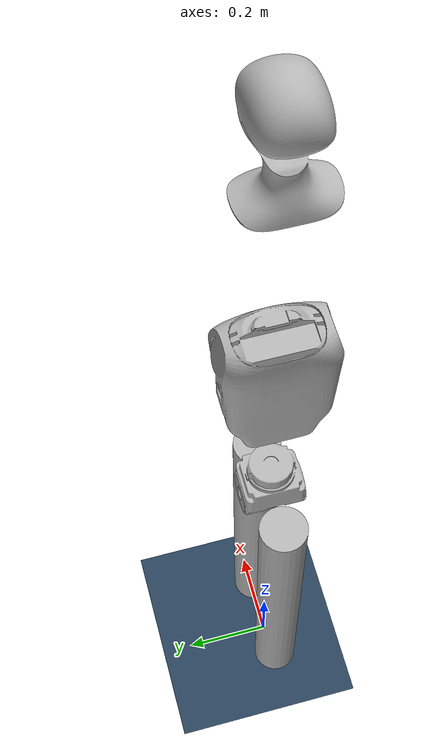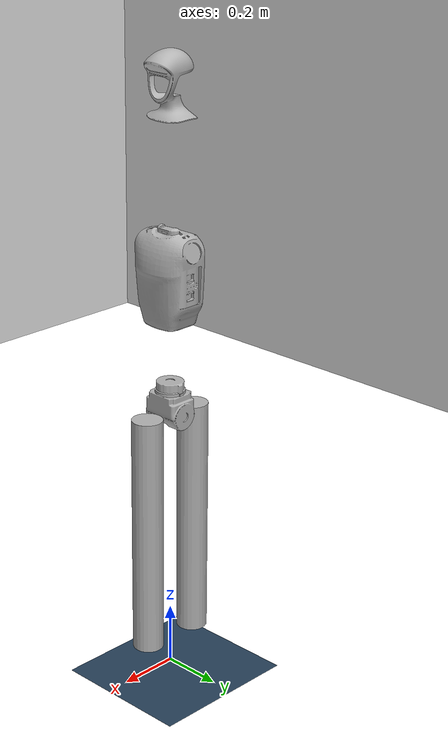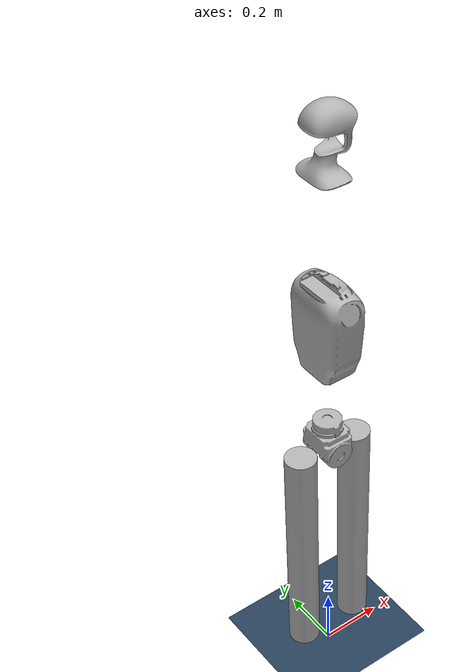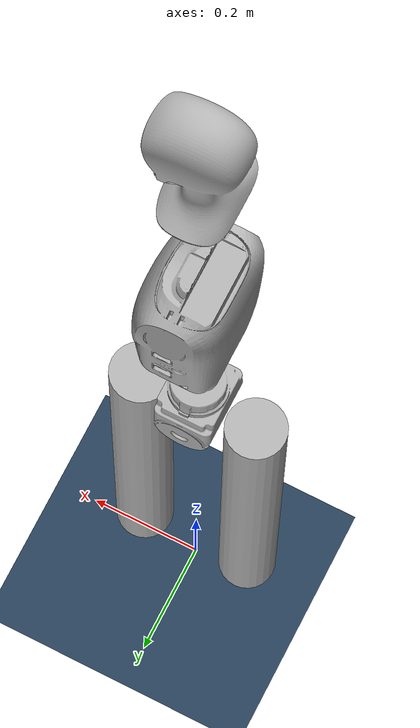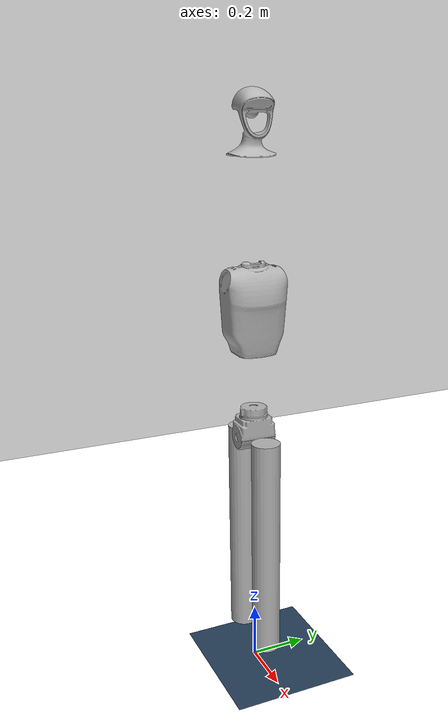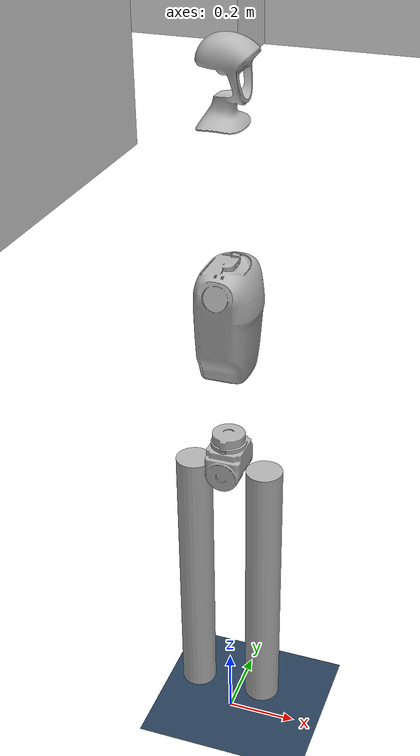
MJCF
<mujoco model="g1_office_complete">
  <compiler angle="radian" autolimits="true"/>

  <statistic center="0 0 2" extent="20"/>

  <visual>
    <headlight diffuse="0.6 0.6 0.6" ambient="0.3 0.3 0.3" specular="0 0 0"/>
    <rgba haze="0.15 0.25 0.35 1"/>
    <global azimuth="-130" elevation="-20"/>
  </visual>

  <default>
    <!-- Classes do G1 -->
    <default class="leg_motor">
      <joint damping="0.05" armature="0.01" frictionloss="0.2" />
    </default>
    <default class="ankle_motor">
      <joint damping="0.05" armature="0.01" frictionloss="0.2" />
    </default>
    <default class="arm_motor">
      <joint damping="0.05" armature="0.01" frictionloss="0.2" />
    </default>
    <default class="waist_motor">
      <joint damping="0.05" armature="0.01" frictionloss="0.2" />
    </default>
    <default class="hand_motor">
      <joint damping="0.01" armature="0.001" frictionloss="0.05" />
    </default>
  </default>

  <asset>
    <texture type="skybox" builtin="gradient" rgb1="0.3 0.5 0.7" rgb2="0 0 0" width="512" height="3072"/>
    <texture type="2d" name="groundplane" builtin="checker" mark="edge" rgb1="0.2 0.3 0.4" rgb2="0.1 0.2 0.3"
      markrgb="0.8 0.8 0.8" width="300" height="300"/>
    <material name="groundplane" texture="groundplane" texuniform="true" texrepeat="5 5" reflectance="0.2"/>
    <material name="wall" rgba="0.9 0.9 0.9 1" specular="0.1"/>

    <!-- Paredes do escritório -->
    <mesh name="office_walls" file="3d escritorio/body1_structure/body1_structure.obj" scale="0.01 0.01 0.01"/>

    <!-- Meshes do G1 - apenas as principais para teste -->
    <mesh name="pelvis" file="unitree_mujoco/unitree_robots/g1/meshes/pelvis.STL" />
    <mesh name="left_hip_pitch_link" file="unitree_mujoco/unitree_robots/g1/meshes/left_hip_pitch_link.STL" />
    <mesh name="right_hip_pitch_link" file="unitree_mujoco/unitree_robots/g1/meshes/right_hip_pitch_link.STL" />
    <mesh name="torso_link" file="unitree_mujoco/unitree_robots/g1/meshes/torso_link.STL" />
    <mesh name="head_link" file="unitree_mujoco/unitree_robots/g1/meshes/head_link.STL" />
  </asset>

  <worldbody>
    <!-- Iluminação -->
    <light pos="0 0 10" dir="0 0 -1" directional="true"/>
    <light pos="10 10 8" dir="-1 -1 -1" directional="false"/>

    <!-- Chão -->
    <geom name="floor" size="50 50 0.05" type="plane" material="groundplane"/>

    <!-- Paredes do escritório -->
    <body name="walls" pos="-5.73 -7.00 0">
      <geom name="office_walls_geom" mesh="office_walls" type="mesh" contype="1" conaffinity="1" material="wall"/>
    </body>

    <!-- G1 simplificado com alguns meshes -->
    <body name="pelvis" pos="0 0 1">
      <inertial pos="0 0 0" mass="5.5" diaginertia="0.05 0.05 0.02"/>
      <geom type="mesh" mesh="pelvis" rgba="0.7 0.7 0.7 1"/>

      <!-- Torso -->
      <body name="torso" pos="0 0 0.2">
        <inertial pos="0 0 0" mass="10" diaginertia="0.1 0.1 0.05"/>
        <geom type="mesh" mesh="torso_link" rgba="0.7 0.7 0.7 1"/>

        <!-- Cabeça -->
        <body name="head" pos="0 0 0.3">
          <inertial pos="0 0 0" mass="2" diaginertia="0.01 0.01 0.01"/>
          <geom type="mesh" mesh="head_link" rgba="0.7 0.7 0.7 1"/>
        </body>
      </body>

      <!-- Pernas simplificadas com cilindros -->
      <body name="left_leg" pos="0.1 0 -0.1">
        <geom type="cylinder" size="0.05 0.4" pos="0 0 -0.4" rgba="0.7 0.7 0.7 1"/>
      </body>
      <body name="right_leg" pos="-0.1 0 -0.1">
        <geom type="cylinder" size="0.05 0.4" pos="0 0 -0.4" rgba="0.7 0.7 0.7 1"/>
      </body>
    </body>
  </worldbody>
</mujoco>
